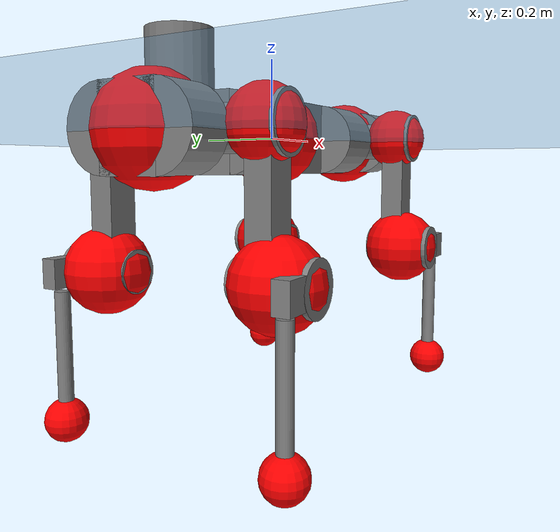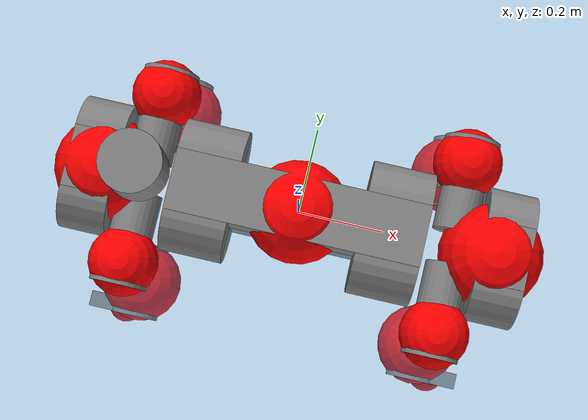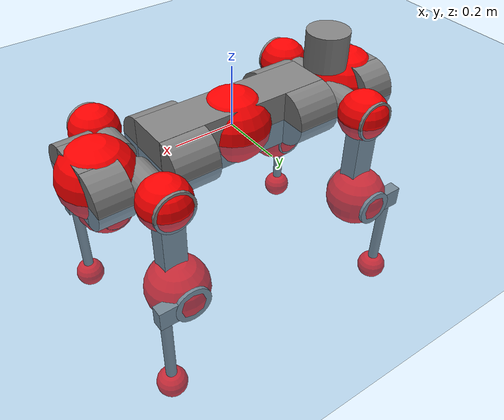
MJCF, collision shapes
<mujoco model="anymal_c">
  <compiler angle="radian" assetdir="assets" balanceinertia="true" inertiafromgeom="false"/>

  <option timestep="0.005" density="1.2" viscosity="2e-05"/>

  <size nkey="1"/>

  <visual>
    <quality shadowsize="8192"/>
    <map shadowclip="0.5"/>
  </visual>

  <default>
    <default class="/">
      <material specular="0" shininess="0.25"/>
      <geom contype="0" conaffinity="0" group="1" solref="-1000 -80"/>
      <site size="0.01 0.005 0.005" group="5"/>
      <general forcelimited="true" forcerange="-80 80" biastype="affine" gainprm="80" biasprm="0 -80 -2"/>
      <default class="anymal_c">
        <joint armature="0.01" damping="0.01" frictionloss="0.1"/>
        <default class="visual">
          <geom type="mesh" group="2"/>
          <default class="visual_zflip"/>
        </default>
        <default class="collision">
          <geom type="cylinder" group="3"/>
          <default class="foot">
            <geom size="0.03 0 0" type="sphere" condim="6" priority="1" friction="0.8 0.02 0.01" solimp="0.015 1 0.03"/>
          </default>
        </default>
      </default>
      <default class="reward_collision_sphere">
        <geom group="5" rgba="1 0 0 1"/>
      </default>
    </default>
  </default>

  <asset>
    <texture type="skybox" colorspace="auto" name="//unnamed_texture_0" builtin="gradient" rgb1="0.95 0.95 0.95" rgb2="0.95 0.95 0.95" width="100" height="600"/>
    <texture type="2d" colorspace="auto" name="texplane" builtin="checker" rgb1="0.345 0.575 0.748" rgb2="0.345 0.575 0.748" markrgb="1 1 1" width="512" height="512"/>
    <texture type="2d" colorspace="linear" name="base" file="base.png"/>
    <texture type="2d" colorspace="linear" name="top_shell" file="top_shell.png"/>
    <texture type="2d" colorspace="linear" name="bottom_shell" file="bottom_shell.png"/>
    <texture type="2d" colorspace="linear" name="remote" file="remote.png"/>
    <texture type="2d" colorspace="linear" name="hatch" file="hatch.png"/>
    <texture type="2d" colorspace="linear" name="handle" file="handle.png"/>
    <texture type="2d" colorspace="linear" name="face" file="face.png"/>
    <texture type="2d" colorspace="linear" name="battery" file="battery.png"/>
    <texture type="2d" colorspace="linear" name="lidar_cage" file="lidar_cage.png"/>
    <texture type="2d" colorspace="linear" name="depth_camera" file="depth_camera.png"/>
    <texture type="2d" colorspace="linear" name="wide_angle_camera" file="wide_angle_camera.png"/>
    <texture type="2d" colorspace="linear" name="lidar" file="lidar.png"/>
    <texture type="2d" colorspace="linear" name="drive" file="drive.png"/>
    <texture type="2d" colorspace="linear" name="hip_l" file="hip_l.png"/>
    <texture type="2d" colorspace="linear" name="shank_l" file="shank_l.png"/>
    <texture type="2d" colorspace="linear" name="foot" file="foot.png"/>
    <texture type="2d" colorspace="linear" name="thigh" file="thigh.png"/>
    <texture type="2d" colorspace="linear" name="shank_r" file="shank_r.png"/>
    <texture type="2d" colorspace="linear" name="hip_r" file="hip_r.png"/>
    <material name="MatPlane" class="/" texture="texplane" texuniform="true" texrepeat="2 2" specular="0.9" shininess="0.5"/>
    <material name="black_plastic" class="/" rgba="0.007 0.007 0.007 1"/>
    <material name="green" class="/" rgba="0.052 0.178 0.033 1"/>
    <material name="red" class="/" rgba="0.178 0.006 0.005 1"/>
    <material name="yellow" class="/" rgba="0.178 0.119 0.006 1"/>
    <material name="lwl" class="/" rgba="0.8 0.8 0.8 1"/>
    <material name="base" class="/" texture="base"/>
    <material name="top_shell" class="/" texture="top_shell"/>
    <material name="bottom_shell" class="/" texture="bottom_shell"/>
    <material name="hip_l" class="/" texture="hip_l"/>
    <material name="thigh" class="/" texture="thigh"/>
    <material name="shank_l" class="/" texture="shank_l"/>
    <material name="foot" class="/" texture="foot"/>
    <material name="hip_r" class="/" texture="hip_r"/>
    <material name="shank" class="/" texture="shank_r"/>
    <material name="hatch" class="/" texture="hatch"/>
    <material name="remote" class="/" texture="remote"/>
    <material name="handle" class="/" texture="handle"/>
    <material name="face" class="/" texture="face"/>
    <material name="depth_camera" class="/" texture="depth_camera"/>
    <material name="wide_angle_camera" class="/" texture="wide_angle_camera"/>
    <material name="battery" class="/" texture="battery"/>
    <material name="lidar_cage" class="/" texture="lidar_cage"/>
    <material name="lidar" class="/" texture="lidar"/>
    <material name="drive" class="/" texture="drive"/>
    <mesh name="base_0" class="/" file="base_0.obj"/>
    <mesh name="base_1" class="/" file="base_1.obj"/>
    <mesh name="base_2" class="/" file="base_2.obj"/>
    <mesh name="base_3" class="/" file="base_3.obj"/>
    <mesh name="base_4" class="/" file="base_4.obj"/>
    <mesh name="base_5" class="/" file="base_5.obj"/>
    <mesh name="top_shell" class="/" file="top_shell.obj"/>
    <mesh name="bottom_shell" class="/" file="bottom_shell.obj"/>
    <mesh name="remote" class="/" file="remote.obj"/>
    <mesh name="handle" class="/" file="handle.obj"/>
    <mesh name="face" class="/" file="face.obj"/>
    <mesh name="wide_angle_camera" class="/" file="wide_angle_camera.obj"/>
    <mesh name="depth_camera" class="/" file="depth_camera.obj"/>
    <mesh name="battery" class="/" file="battery.obj"/>
    <mesh name="lidar_cage" class="/" file="lidar_cage.obj"/>
    <mesh name="lidar" class="/" file="lidar.obj"/>
    <mesh name="drive" class="/" file="drive.obj"/>
    <mesh name="hip_l" class="/" file="hip_l.obj"/>
    <mesh name="thigh" class="/" file="thigh.obj"/>
    <mesh name="shank_l" class="/" file="shank_l.obj"/>
    <mesh name="foot" class="/" file="foot.obj"/>
    <mesh name="hip_r" class="/" file="hip_r.obj"/>
    <mesh name="hatch" class="/" file="hatch.obj"/>
    <mesh name="shank_r" class="/" file="shank_r.obj"/>
  </asset>

  <worldbody>
    <geom name="floor" class="/" size="100 100 0.125" type="plane" group="0" material="MatPlane"/>
    <light name="toplight_shadow" class="/" pos="0 0 5" dir="0.0990148 0.0990148 -0.990148" type="directional" ambient="0.04 0.04 0.04" diffuse="0.55 0.55 0.55" specular="0.12 0.12 0.12"/>
    <light name="toplight_fill" class="/" pos="0 0 5" dir="0.0990148 0.0990148 -0.990148" type="directional" castshadow="false" ambient="0.04 0.04 0.04" diffuse="0.3 0.3 0.3" specular="0.08 0.08 0.08"/>
    <body name="trunk" childclass="anymal_c" pos="-0.00125839 0.000354656 0.0021069" quat="0.999999 -1.35082e-05 4.13395e-05 0.00130995">
      <inertial pos="0.0026303 -0.00170241 0.0512103" quat="0.502148 0.497885 0.498286 0.501667" mass="19.9932" diaginertia="0.674955 0.444232 0.340047"/>
      <joint name="//unnamed_joint_0" type="free" armature="0" damping="0" frictionloss="0"/>
      <geom name="//unnamed_geom_1" class="visual" material="green" mesh="base_0"/>
      <geom name="//unnamed_geom_2" class="visual" material="yellow" mesh="base_1"/>
      <geom name="//unnamed_geom_3" class="visual" material="red" mesh="base_2"/>
      <geom name="//unnamed_geom_4" class="visual" material="black_plastic" mesh="base_3"/>
      <geom name="//unnamed_geom_5" class="visual" material="lwl" mesh="base_4"/>
      <geom name="//unnamed_geom_6" class="visual" material="base" mesh="base_5"/>
      <geom name="trunk_1" class="collision" size="0.294056 0.0709789 0.0912586" type="box"/>
      <geom name="trunk_2" class="collision" size="0.0912586 0.0735139" pos="0.220042 0.0654731 0" quat="0.707107 0 0.707107 0"/>
      <geom name="trunk_3" class="collision" size="0.0912586 0.0735139" pos="-0.220042 0.0654731 0" quat="0.707107 0 0.707107 0"/>
      <geom name="trunk_4" class="collision" size="0.0912586 0.0735139" pos="0.220042 -0.0654731 0" quat="0.707107 0 0.707107 0"/>
      <geom name="trunk_5" class="collision" size="0.0912586 0.0735139" pos="-0.220042 -0.0654731 0" quat="0.707107 0 0.707107 0"/>
      <geom name="//unnamed_geom_12" class="visual" material="top_shell" mesh="top_shell"/>
      <geom name="//unnamed_geom_13" class="visual" material="bottom_shell" mesh="bottom_shell"/>
      <geom name="//unnamed_geom_14" class="visual" material="remote" mesh="remote"/>
      <geom name="//unnamed_geom_15" class="visual" material="handle" mesh="handle"/>
      <geom name="//unnamed_geom_16" class="visual" pos="0.419345 0 0" quat="1 0 0 0" material="face" mesh="face"/>
      <geom name="trunk_6" class="collision" size="0.0557692 0.0709789 0.0912586" pos="0.474988 0 0" type="box"/>
      <geom name="//unnamed_geom_18" class="collision" size="0.0912586 0.0557692" pos="0.474988 0.0654731 0" quat="0.707107 0 0.707107 0"/>
      <geom name="//unnamed_geom_19" class="collision" size="0.0912586 0.0557692" pos="0.474988 -0.0654731 0" quat="0.707107 0 0.707107 0"/>
      <geom name="//unnamed_geom_20" class="visual" pos="0.46705 0 -0.0326048" quat="0.965926 0 0.258819 0" material="depth_camera" mesh="depth_camera"/>
      <geom name="//unnamed_geom_21" class="visual" pos="0.518997 0 0.0163912" material="wide_angle_camera" mesh="wide_angle_camera"/>
      <geom name="//unnamed_geom_22" class="visual_zflip" pos="-0.419345 0 0" quat="0 0 0 1" material="face" mesh="face"/>
      <geom name="trunk_7" class="collision" size="0.0557692 0.0709789 0.0912586" pos="-0.474988 0 0" quat="0 0 0 1" type="box"/>
      <geom name="//unnamed_geom_24" class="collision" size="0.0912586 0.0557692" pos="-0.474988 -0.0654731 0" quat="0 -0.707107 0 0.707107"/>
      <geom name="//unnamed_geom_25" class="collision" size="0.0912586 0.0557692" pos="-0.474988 0.0654731 0" quat="0 -0.707107 0 0.707107"/>
      <geom name="//unnamed_geom_26" class="visual" pos="-0.46705 0 -0.0326048" quat="0 -0.258819 0 0.965926" material="depth_camera" mesh="depth_camera"/>
      <geom name="//unnamed_geom_27" class="visual_zflip" pos="-0.518997 0 0.0163912" quat="0 0 0 1" material="wide_angle_camera" mesh="wide_angle_camera"/>
      <geom name="//unnamed_geom_28" class="visual" material="battery" mesh="battery"/>
      <geom name="//unnamed_geom_29" class="visual" pos="0 0.0705168 0.0311752" quat="0.683013 -0.183013 0.183013 0.683013" material="depth_camera" mesh="depth_camera"/>
      <geom name="//unnamed_geom_30" class="visual" pos="0 -0.0705168 0.0311752" quat="0.683013 0.183013 0.183013 -0.683013" material="depth_camera" mesh="depth_camera"/>
      <geom name="//unnamed_geom_31" class="visual" pos="-0.368255 0 0.0804777" quat="1 0 0 0" material="lidar_cage" mesh="lidar_cage"/>
      <geom name="trunk_8" class="collision" size="0.0709789 0.0608391" pos="-0.368255 0 0.146174"/>
      <geom name="//unnamed_geom_33" class="visual" pos="-0.368255 -2.99998e-05 0.1557" quat="0.707107 0 0 -0.707107" material="lidar" mesh="lidar"/>
      <geom name="//unnamed_geom_34" class="visual" pos="0.303406 0.097331 -2.75321e-09" quat="0.258819 0.965926 0 0" material="drive" mesh="drive"/>
      <geom name="//unnamed_geom_35" class="visual" pos="0.303406 -0.097331 2.75321e-09" quat="0.258819 -0.965926 0 0" material="drive" mesh="drive"/>
      <geom name="//unnamed_geom_36" class="visual" pos="-0.303406 0.097331 2.75321e-09" quat="0 0 0.965926 -0.258819" material="drive" mesh="drive"/>
      <geom name="//unnamed_geom_37" class="visual" pos="-0.303406 -0.097331 -2.75321e-09" quat="0 0 -0.965926 -0.258819" material="drive" mesh="drive"/>
      <geom name="//unnamed_geom_38" class="visual" pos="0.117356 0 0.0799302" quat="1 0 0 0" material="hatch" mesh="hatch"/>
      <geom name="//unnamed_geom_39" class="reward_collision_sphere" size="0.121678"/>
      <geom name="//unnamed_geom_40" class="reward_collision_sphere" size="0.121678" pos="0.45526 0 0"/>
      <geom name="//unnamed_geom_41" class="reward_collision_sphere" size="0.121678" pos="-0.45526 0 0"/>
      <site name="imu" pos="0.257298 0.00798699 0.044922" size="0.0101398"/>
      <camera name="track" pos="0 -1.87066 0" quat="0.707107 0.707107 0 0" mode="trackcom"/>
      <camera name="ego_camera" pos="0.45526 0 -0.0437974" quat="-0.5 -0.5 0.5 0.5"/>
      <body name="LF_HIP" pos="0.301328 0.0949708 -0.00149561" quat="0.258864 0.965914 9.61603e-05 -0.000136464">
        <inertial pos="0.0576505 -0.0165174 -0.00795461" quat="-0.128516 0.70999 -0.13605 0.678887" mass="3.0047" diaginertia="0.00620953 0.00343187 0.00519423"/>
        <joint name="LF_HAA" pos="0 0 0" axis="0.999993 0.00334803 0.00177082" range="-0.715682 0.539059" armature="0.00966064" damping="0.0245458" frictionloss="0.0875503"/>
        <geom name="//unnamed_geom_42" class="visual" pos="0 -0.000161959 2.66016e-05" quat="0.258819 -0.965926 0 0" material="hip_l" mesh="hip_l"/>
        <geom name="//unnamed_geom_43" class="visual" pos="0.0606002 -0.0724814 -0.0430277" quat="0.183013 -0.683013 0.683013 0.183013" material="drive" mesh="drive"/>
        <geom name="//unnamed_geom_44" class="collision" size="0.0506992 0.0709789" pos="0.0606002 -0.0111864 -0.00756053" quat="-0.353553 -0.612372 0.612372 -0.353553"/>
        <body name="LF_THIGH" pos="0.0581207 -0.0667528 -0.0441905" quat="0.183399 -0.683184 0.682903 0.182393">
          <inertial pos="0.0303562 -0.000130725 -0.266162" quat="0.992278 -0.0106097 -0.079717 0.0944333" mass="3.13129" diaginertia="0.0325098 0.0215563 0.00680446"/>
          <joint name="LF_HFE" pos="0 0 0" axis="0.999998 0.0015033 -0.0011389" stiffness="0.00402988" range="-3.10817 3.19344" armature="0.00948957" damping="0.0192878" frictionloss="0.0871137"/>
          <geom name="//unnamed_geom_45" class="visual" pos="0.00151926 2.394e-06 0" quat="0.707107 0 0 -0.707107" material="thigh" mesh="thigh"/>
          <geom name="//unnamed_geom_46" class="collision" size="0.065909 0.0405594" pos="0.0404676 0 0" quat="0.5 0.5 -0.5 -0.5"/>
          <geom name="//unnamed_geom_47" class="collision" size="0.0380244 0.0304195 0.14329" pos="0.0303507 0 -0.15473" quat="0.707107 0 0 -0.707107" type="box"/>
          <geom name="//unnamed_geom_48" class="visual" pos="0.101472 0 -0.312056" quat="1 0 0 0" material="drive" mesh="drive"/>
          <geom name="//unnamed_geom_49" class="collision" size="0.0506992 0.0709789" pos="0.0306542 0 -0.312056" quat="0.707107 0 0.707107 0"/>
          <geom name="//unnamed_geom_50" class="reward_collision_sphere" size="0.0811188" pos="0.0252922 0 0"/>
          <body name="LF_SHANK" pos="0.101233 0.00174345 -0.310418" quat="1 -0.000425988 2.54778e-06 0.00040333">
            <inertial pos="0.00510359 -0.0565319 -0.0910479" quat="0.99284 -0.116848 -0.00215941 -0.0247275" mass="0.615228" diaginertia="0.0104752 0.00652822 0.00177131"/>
            <joint name="LF_KFE" pos="0 0 0" axis="0.999998 0.000243983 -0.00222179" range="-3.08521 3.14175" armature="0.0111158" damping="0.00453263" frictionloss="0.100742"/>
            <geom name="//unnamed_geom_51" class="visual" pos="0.000495398 0.00264149 0" quat="0.707107 0 0 -0.707107" material="shank_l" mesh="shank_l"/>
            <geom name="LF_kfe_act" class="collision" size="0.0608391 0.0202797" pos="0.0202338 0 0" quat="0.5 0.5 -0.5 -0.5"/>
            <geom name="//unnamed_geom_53" class="collision" size="0.0583031 0.034222 0.0192657" pos="0.0202338 -0.0537805 0" quat="0.5 0.5 -0.5 -0.5" type="box"/>
            <geom name="//unnamed_geom_54" class="visual" pos="0.0132024 -0.081411 -0.370055" quat="0.382683 0 0 -0.92388" material="foot" mesh="foot"/>
            <geom name="LF_calf" class="collision" size="0.0177447 0.143227" pos="0.0132025 -0.0822622 -0.185028" quat="0.707107 0 0 -0.707107"/>
            <geom name="LF_foot" class="foot" size="0.0302773" pos="0.0132025 -0.0822622 -0.345419" quat="0.707107 0 0 -0.707107"/>
            <geom name="//unnamed_geom_57" class="reward_collision_sphere" size="0.101398" pos="-0.0505845 0 0"/>
            <geom name="//unnamed_geom_58" class="reward_collision_sphere" size="0.0506992" pos="0.0132025 -0.0822622 -0.345419"/>
            <site name="LF_foot" class="foot" pos="0.0132025 -0.0822622 -0.345419" quat="0.707107 0 0 -0.707107" size="0.0101398"/>
          </body>
        </body>
      </body>
      <body name="RF_HIP" pos="0.302672 -0.0980871 -0.000979606" quat="0.258779 -0.965937 -0.00010865 0.000120812">
        <inertial pos="0.0546551 0.0147249 -0.011895" quat="0.135711 0.67792 0.126858 0.711277" mass="2.93577" diaginertia="0.00603757 0.0035767 0.00502166"/>
        <joint name="RF_HAA" pos="0 0 0" axis="0.999953 -0.0033263 -0.00909198" range="-0.495536 0.714828" armature="0.01034" damping="0" frictionloss="0.112771"/>
        <geom name="//unnamed_geom_59" class="visual" pos="0 0.000161957 2.66015e-05" quat="0.258819 0.965926 0 0" material="hip_r" mesh="hip_r"/>
        <geom name="//unnamed_geom_60" class="visual" pos="0.0606002 0.0724814 -0.0430277" quat="0.183013 0.683013 0.683013 -0.183013" material="drive" mesh="drive"/>
        <geom name="//unnamed_geom_61" class="collision" size="0.0506992 0.0709789" pos="0.0606002 0.0111864 -0.00756053" quat="-0.353553 0.612372 0.612372 0.353553"/>
        <body name="RF_THIGH" pos="0.0636276 0.0654399 -0.0476071" quat="0.182988 0.682499 0.683391 -0.183543">
          <inertial pos="0.0322637 -0.00187189 -0.271628" quat="0.994352 -0.00550968 -0.0699033 0.0796754" mass="3.27779" diaginertia="0.0307968 0.0207604 0.00664275"/>
          <joint name="RF_HFE" pos="0 0 0" axis="0.999997 0.00245456 7.19657e-05" range="-3.10228 3.13286" armature="0.00886875" damping="0.011659" frictionloss="0.114144"/>
          <geom name="//unnamed_geom_62" class="visual" pos="0.00151926 2.394e-06 0" quat="0.707107 0 0 -0.707107" material="thigh" mesh="thigh"/>
          <geom name="//unnamed_geom_63" class="collision" size="0.065909 0.0405594" pos="0.0404676 0 0" quat="0.5 0.5 0.5 0.5"/>
          <geom name="//unnamed_geom_64" class="collision" size="0.0380244 0.0304195 0.14329" pos="0.0303507 0 -0.15473" quat="0.707107 0 0 0.707107" type="box"/>
          <geom name="//unnamed_geom_65" class="visual" pos="0.101472 0 -0.312056" quat="1 0 0 0" material="drive" mesh="drive"/>
          <geom name="//unnamed_geom_66" class="collision" size="0.0506992 0.0709789" pos="0.0306542 0 -0.312056" quat="0.707107 0 0.707107 0"/>
          <geom name="//unnamed_geom_67" class="reward_collision_sphere" size="0.0811188" pos="0.0252922 0 0"/>
          <body name="RF_SHANK" pos="0.0983028 0.000764369 -0.313163" quat="0.999999 -0.000564761 -0.000816361 -0.00099527">
            <inertial pos="0.00328799 0.0571822 -0.0880269" quat="0.992846 0.116476 0.00142097 0.0262319" mass="0.65343" diaginertia="0.0114256 0.0065783 0.00182353"/>
            <joint name="RF_KFE" pos="0 0 0" axis="0.999981 -0.00575848 0.00198207" range="-3.15891 3.0808" armature="0.0113885" damping="0.013473" frictionloss="0.114773"/>
            <geom name="//unnamed_geom_68" class="visual" pos="0.000495396 -0.00264148 0" quat="0.707107 0 0 0.707107" material="shank" mesh="shank_r"/>
            <geom name="RF_kfe_act" class="collision" size="0.0608391 0.0202797" pos="0.0202338 0 0" quat="0.5 0.5 0.5 0.5"/>
            <geom name="//unnamed_geom_70" class="collision" size="0.0583031 0.034222 0.0192657" pos="0.0202338 0.0537805 0" quat="0.5 0.5 0.5 0.5" type="box"/>
            <geom name="//unnamed_geom_71" class="visual" pos="0.0132027 0.081411 -0.370055" quat="0.382683 0 0 0.92388" material="foot" mesh="foot"/>
            <geom name="RF_calf" class="collision" size="0.0177447 0.143227" pos="0.0132025 0.0822622 -0.185028" quat="0.707107 0 0 0.707107"/>
            <geom name="RF_foot" class="foot" size="0.0278435" pos="0.0132025 0.0822622 -0.345419" quat="0.707107 0 0 0.707107"/>
            <geom name="//unnamed_geom_74" class="reward_collision_sphere" size="0.101398" pos="-0.0505845 0 0"/>
            <geom name="//unnamed_geom_75" class="reward_collision_sphere" size="0.0506992" pos="0.0132025 0.0822622 -0.345419"/>
            <site name="RF_foot" class="foot" pos="0.0132025 0.0822622 -0.345419" quat="0.707107 0 0 0.707107" size="0.0101398"/>
          </body>
        </body>
      </body>
      <body name="LH_HIP" pos="-0.301485 0.095203 -0.00130605" quat="-0.00030778 -0.000471299 0.965828 -0.259185">
        <inertial pos="0.0577213 0.0168001 -0.00981065" quat="0.141889 0.682061 0.120012 0.707289" mass="2.93188" diaginertia="0.00625276 0.00352621 0.00505197"/>
        <joint name="LH_HAA" pos="0 0 0" axis="0.999934 0.00518133 0.0102887" range="-0.488025 0.767847" armature="0.0106314" damping="0.00416936" frictionloss="0.101515"/>
        <geom name="//unnamed_geom_76" class="visual" pos="0 0.000161957 2.66015e-05" quat="-0.258819 -0.965926 0 0" material="hip_r" mesh="hip_r"/>
        <geom name="//unnamed_geom_77" class="visual" pos="0.0606002 0.0724814 -0.0430277" quat="0.183013 0.683013 0.683013 -0.183013" material="drive" mesh="drive"/>
        <geom name="//unnamed_geom_78" class="collision" size="0.0506992 0.0709789" pos="0.0606002 0.0111864 -0.00756053" quat="-0.353553 0.612372 0.612372 0.353553"/>
        <body name="LH_THIGH" pos="0.0600201 0.066104 -0.0438341" quat="0.18303 0.68328 0.682578 -0.183615">
          <inertial pos="0.0313182 0.00185708 -0.269622" quat="0.992719 -0.00479798 -0.080879 0.0891291" mass="3.00021" diaginertia="0.0309074 0.0213753 0.00654776"/>
          <joint name="LH_HFE" pos="0 0 0" axis="1 0.000242708 1.98164e-05" stiffness="0.00424562" range="-3.19802 3.08483" armature="0.010371" damping="0" frictionloss="0.101414"/>
          <geom name="//unnamed_geom_79" class="visual" pos="0.00151926 2.394e-06 0" quat="0.707107 0 0 -0.707107" material="thigh" mesh="thigh"/>
          <geom name="//unnamed_geom_80" class="collision" size="0.065909 0.0405594" pos="0.0404676 0 0" quat="0.5 0.5 -0.5 -0.5"/>
          <geom name="//unnamed_geom_81" class="collision" size="0.0380244 0.0304195 0.14329" pos="0.0303507 0 -0.15473" quat="0.707107 0 0 -0.707107" type="box"/>
          <geom name="//unnamed_geom_82" class="visual" pos="0.101472 0 -0.312056" quat="1 0 0 0" material="drive" mesh="drive"/>
          <geom name="//unnamed_geom_83" class="collision" size="0.0506992 0.0709789" pos="0.0306542 0 -0.312056" quat="0.707107 0 0.707107 0"/>
          <geom name="//unnamed_geom_84" class="reward_collision_sphere" size="0.0811188" pos="0.0252922 0 0"/>
          <body name="LH_SHANK" pos="0.0997555 0.0014463 -0.314898" quat="1 0.000135772 1.255e-05 -5.46725e-05">
            <inertial pos="0.00832219 0.0588862 -0.0901911" quat="0.994061 0.106434 0.00821535 0.0211393" mass="0.613055" diaginertia="0.0103771 0.00674007 0.00179515"/>
            <joint name="LH_KFE" pos="0 0 0" axis="1 0.000273841 -0.000295538" stiffness="0.00446766" range="-3.10589 3.08625" armature="0.0107033" damping="0.0143743" frictionloss="0.0910039"/>
            <geom name="//unnamed_geom_85" class="visual" pos="0.000495396 -0.00264148 0" quat="-0.707107 0 0 -0.707107" material="shank" mesh="shank_r"/>
            <geom name="LH_kfe_act" class="collision" size="0.0608391 0.0202797" pos="0.0202338 0 0" quat="0.5 0.5 -0.5 -0.5"/>
            <geom name="//unnamed_geom_87" class="collision" size="0.0583031 0.034222 0.0192657" pos="0.0202338 0.0537805 0" quat="0.5 0.5 -0.5 -0.5" type="box"/>
            <geom name="//unnamed_geom_88" class="visual" pos="0.0132027 0.081411 -0.370055" quat="-0.382683 0 0 -0.92388" material="foot" mesh="foot"/>
            <geom name="LH_calf" class="collision" size="0.0177447 0.143227" pos="0.0132025 0.0822622 -0.185028" quat="0.707107 0 0 -0.707107"/>
            <geom name="LH_foot" class="foot" size="0.0355329" pos="0.0132025 0.0822622 -0.345419" quat="0.707107 0 0 -0.707107"/>
            <geom name="//unnamed_geom_91" class="reward_collision_sphere" size="0.101398" pos="-0.0505845 0 0"/>
            <geom name="//unnamed_geom_92" class="reward_collision_sphere" size="0.0506992" pos="0.0132025 0.0822622 -0.345419"/>
            <site name="LH_foot" class="foot" pos="0.0132025 0.0822622 -0.345419" quat="0.707107 0 0 -0.707107" size="0.0101398"/>
          </body>
        </body>
      </body>
      <body name="RH_HIP" pos="-0.303462 -0.097753 0.0026777" quat="-7.51394e-05 -9.70075e-05 -0.965941 -0.258763">
        <inertial pos="0.0545042 -0.0116245 -0.00990309" quat="-0.126179 0.710111 -0.135399 0.679329" mass="2.96936" diaginertia="0.00621649 0.00351216 0.00517526"/>
        <joint name="RH_HAA" pos="0 0 0" axis="0.999978 0.00462872 0.00482689" range="-0.751644 0.549351" armature="0.00886526" damping="0" frictionloss="0.101747"/>
        <geom name="//unnamed_geom_93" class="visual" pos="0 -0.000161959 2.66016e-05" quat="-0.258819 0.965926 0 0" material="hip_l" mesh="hip_l"/>
        <geom name="//unnamed_geom_94" class="visual" pos="0.0606002 -0.0724814 -0.0430277" quat="-0.183013 0.683013 -0.683013 -0.183013" material="drive" mesh="drive"/>
        <geom name="//unnamed_geom_95" class="collision" size="0.0506992 0.0709789" pos="0.0606002 -0.0111864 -0.00756053" quat="0.353553 0.612372 -0.612372 0.353553"/>
        <body name="RH_THIGH" pos="0.0610879 -0.065455 -0.0467376" quat="-0.183721 0.683333 -0.68248 -0.183096">
          <inertial pos="0.030433 0.00272686 -0.26775" quat="0.993221 -0.00640209 -0.0799512 0.0841352" mass="2.99463" diaginertia="0.0300014 0.0208966 0.00639151"/>
          <joint name="RH_HFE" pos="0 0 0" axis="0.999998 0.00196365 -0.000224711" range="-3.08482 3.11433" armature="0.0100297" damping="0.0207208" frictionloss="0.0988735"/>
          <geom name="//unnamed_geom_96" class="visual" pos="0.00151926 2.394e-06 0" quat="0.707107 0 0 -0.707107" material="thigh" mesh="thigh"/>
          <geom name="//unnamed_geom_97" class="collision" size="0.065909 0.0405594" pos="0.0404676 0 0" quat="0.5 0.5 0.5 0.5"/>
          <geom name="//unnamed_geom_98" class="collision" size="0.0380244 0.0304195 0.14329" pos="0.0303507 0 -0.15473" quat="0.707107 0 0 0.707107" type="box"/>
          <geom name="//unnamed_geom_99" class="visual" pos="0.101472 0 -0.312056" quat="1 0 0 0" material="drive" mesh="drive"/>
          <geom name="//unnamed_geom_100" class="collision" size="0.0506992 0.0709789" pos="0.0306542 0 -0.312056" quat="0.707107 0 0.707107 0"/>
          <geom name="//unnamed_geom_101" class="reward_collision_sphere" size="0.0811188" pos="0.0252922 0 0"/>
          <body name="RH_SHANK" pos="0.101363 0.00196552 -0.313282" quat="1 -0.000342519 0.000446676 5.90048e-05">
            <inertial pos="0.00773366 -0.059749 -0.086944" quat="0.992232 -0.119104 0.00401313 -0.0357004" mass="0.611113" diaginertia="0.0104691 0.00660746 0.00170775"/>
            <joint name="RH_KFE" pos="0 0 0" axis="0.999943 -0.00979847 0.00433273" range="-3.11858 3.16508" armature="0.00987384" damping="0.0139895" frictionloss="0.114638"/>
            <geom name="//unnamed_geom_102" class="visual" pos="0.000495398 0.00264149 0" quat="0.707107 0 0 -0.707107" material="shank_l" mesh="shank_l"/>
            <geom name="RH_kfe_act" class="collision" size="0.0608391 0.0202797" pos="0.0202338 0 0" quat="0.5 0.5 0.5 0.5"/>
            <geom name="//unnamed_geom_104" class="collision" size="0.0583031 0.034222 0.0192657" pos="0.0202338 -0.0537805 0" quat="0.5 0.5 0.5 0.5" type="box"/>
            <geom name="//unnamed_geom_105" class="visual" pos="0.0132024 -0.081411 -0.370055" quat="0.382683 0 0 -0.92388" material="foot" mesh="foot"/>
            <geom name="RH_calf" class="collision" size="0.0177447 0.143227" pos="0.0132025 -0.0822622 -0.185028" quat="0.707107 0 0 0.707107"/>
            <geom name="RH_foot" class="foot" size="0.0263938" pos="0.0132025 -0.0822622 -0.345419" quat="0.707107 0 0 0.707107"/>
            <geom name="//unnamed_geom_108" class="reward_collision_sphere" size="0.101398" pos="-0.0505845 0 0"/>
            <geom name="//unnamed_geom_109" class="reward_collision_sphere" size="0.0506992" pos="0.0132025 -0.0822622 -0.345419"/>
            <site name="RH_foot" class="foot" pos="0.0132025 -0.0822622 -0.345419" quat="0.707107 0 0 0.707107" size="0.0101398"/>
          </body>
        </body>
      </body>
    </body>
  </worldbody>

  <contact>
    <pair class="/" geom1="floor" geom2="LF_foot" name="//unnamed_contact_0"/>
    <pair class="/" geom1="floor" geom2="RF_foot" name="//unnamed_contact_1"/>
    <pair class="/" geom1="floor" geom2="LH_foot" name="//unnamed_contact_2"/>
    <pair class="/" geom1="floor" geom2="RH_foot" name="//unnamed_contact_3"/>
  </contact>

  <actuator>
    <general name="LF_HAA" class="/" joint="LF_HAA" forcerange="-74.4285 74.4285" gainprm="75.4093" biasprm="0 -75.4093 -1.95717"/>
    <general name="LF_HFE" class="/" joint="LF_HFE" forcerange="-78.5579 78.5579" gainprm="75.4093" biasprm="0 -75.4093 -1.95717"/>
    <general name="LF_KFE" class="/" joint="LF_KFE" forcerange="-75.7656 75.7656" gainprm="75.4093" biasprm="0 -75.4093 -1.95717"/>
    <general name="RF_HAA" class="/" joint="RF_HAA" forcerange="-78.4678 78.4678" gainprm="75.4093" biasprm="0 -75.4093 -1.95717"/>
    <general name="RF_HFE" class="/" joint="RF_HFE" forcerange="-90.1895 90.1895" gainprm="75.4093" biasprm="0 -75.4093 -1.95717"/>
    <general name="RF_KFE" class="/" joint="RF_KFE" forcerange="-80.0589 80.0589" gainprm="75.4093" biasprm="0 -75.4093 -1.95717"/>
    <general name="LH_HAA" class="/" joint="LH_HAA" forcerange="-80.5051 80.5051" gainprm="75.4093" biasprm="0 -75.4093 -1.95717"/>
    <general name="LH_HFE" class="/" joint="LH_HFE" forcerange="-73.7873 73.7873" gainprm="75.4093" biasprm="0 -75.4093 -1.95717"/>
    <general name="LH_KFE" class="/" joint="LH_KFE" forcerange="-89.7353 89.7353" gainprm="75.4093" biasprm="0 -75.4093 -1.95717"/>
    <general name="RH_HAA" class="/" joint="RH_HAA" forcerange="-83.6236 83.6236" gainprm="75.4093" biasprm="0 -75.4093 -1.95717"/>
    <general name="RH_HFE" class="/" joint="RH_HFE" forcerange="-86.8552 86.8552" gainprm="75.4093" biasprm="0 -75.4093 -1.95717"/>
    <general name="RH_KFE" class="/" joint="RH_KFE" forcerange="-83.8954 83.8954" gainprm="75.4093" biasprm="0 -75.4093 -1.95717"/>
  </actuator>

  <sensor>
    <gyro site="imu" name="imu_angular_velocity"/>
    <velocimeter site="imu" name="imu_linear_velocity"/>
    <framelinvel objtype="site" objname="LF_foot" name="LF_foot_global_linear_velocity"/>
    <framelinvel objtype="site" objname="RF_foot" name="RF_foot_global_linear_velocity"/>
    <framelinvel objtype="site" objname="LH_foot" name="LH_foot_global_linear_velocity"/>
    <framelinvel objtype="site" objname="RH_foot" name="RH_foot_global_linear_velocity"/>
  </sensor>

  <keyframe>
    <key name="home" qpos="0 0 0.55 1 0 0 0 0 0.4 -0.8 0 -0.4 0.8 0 -0.4 0.8 0 0.4 -0.8"/>
  </keyframe>
</mujoco>
